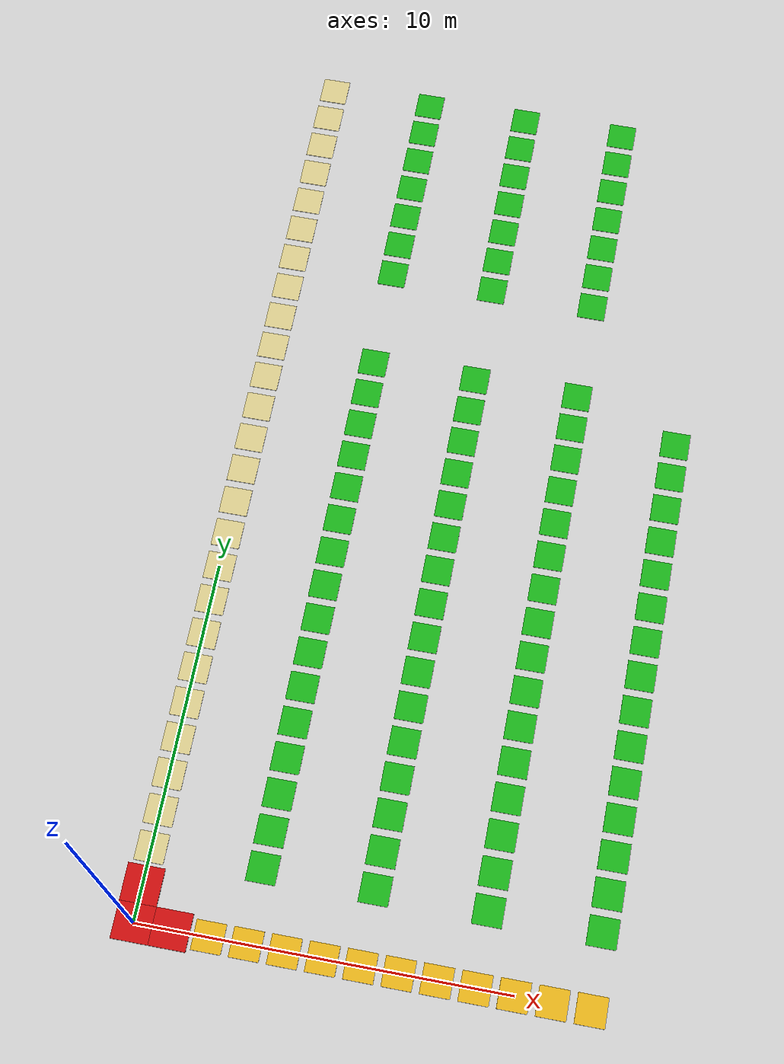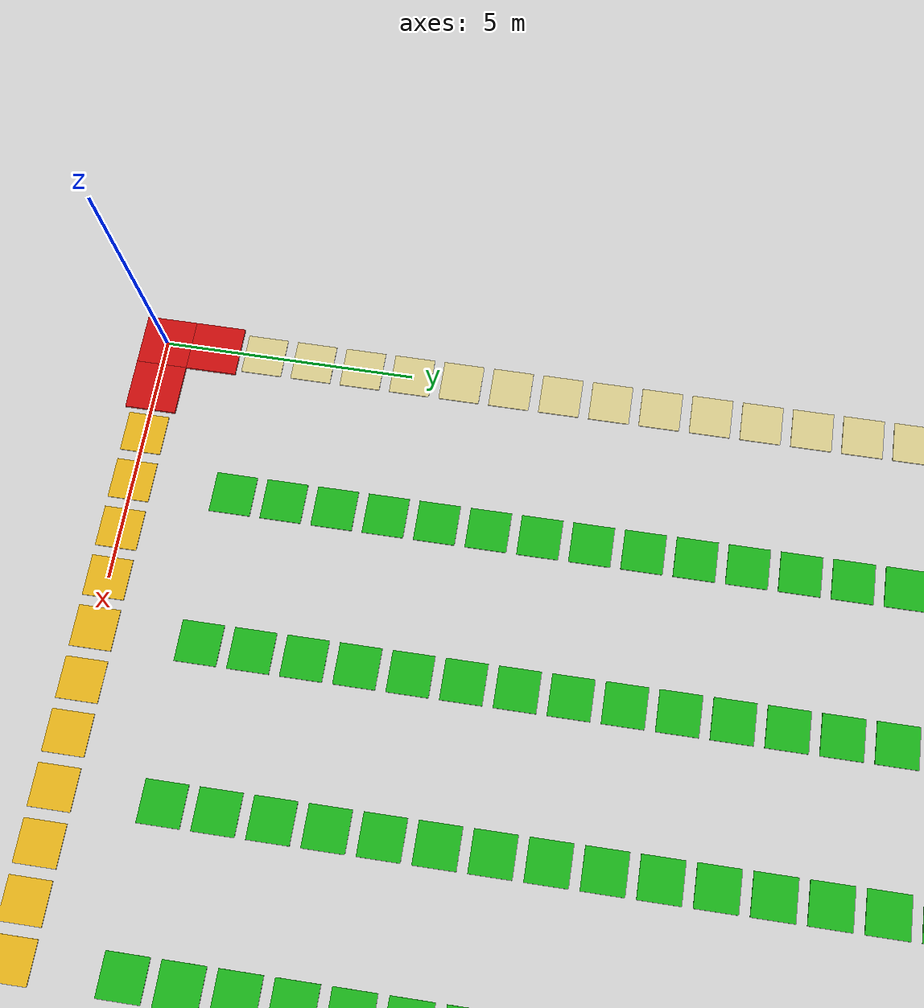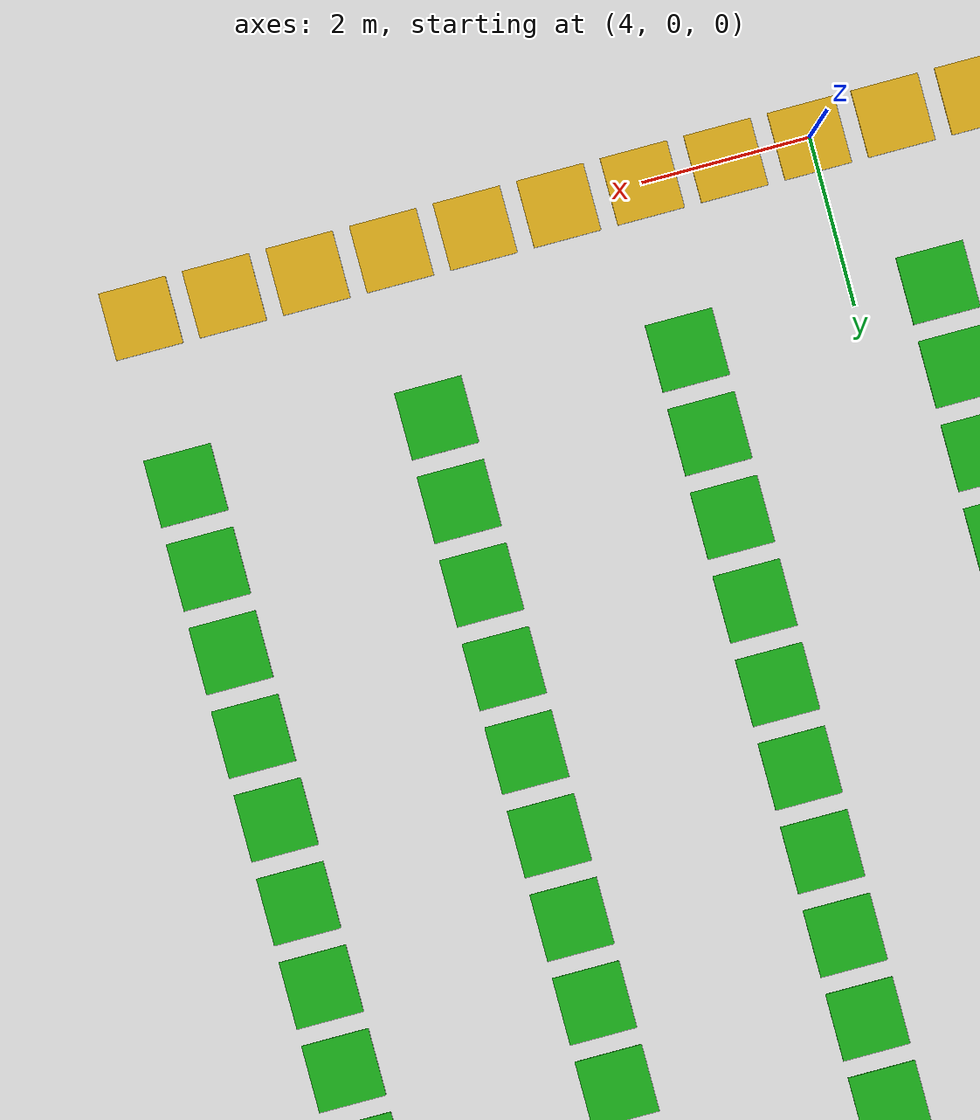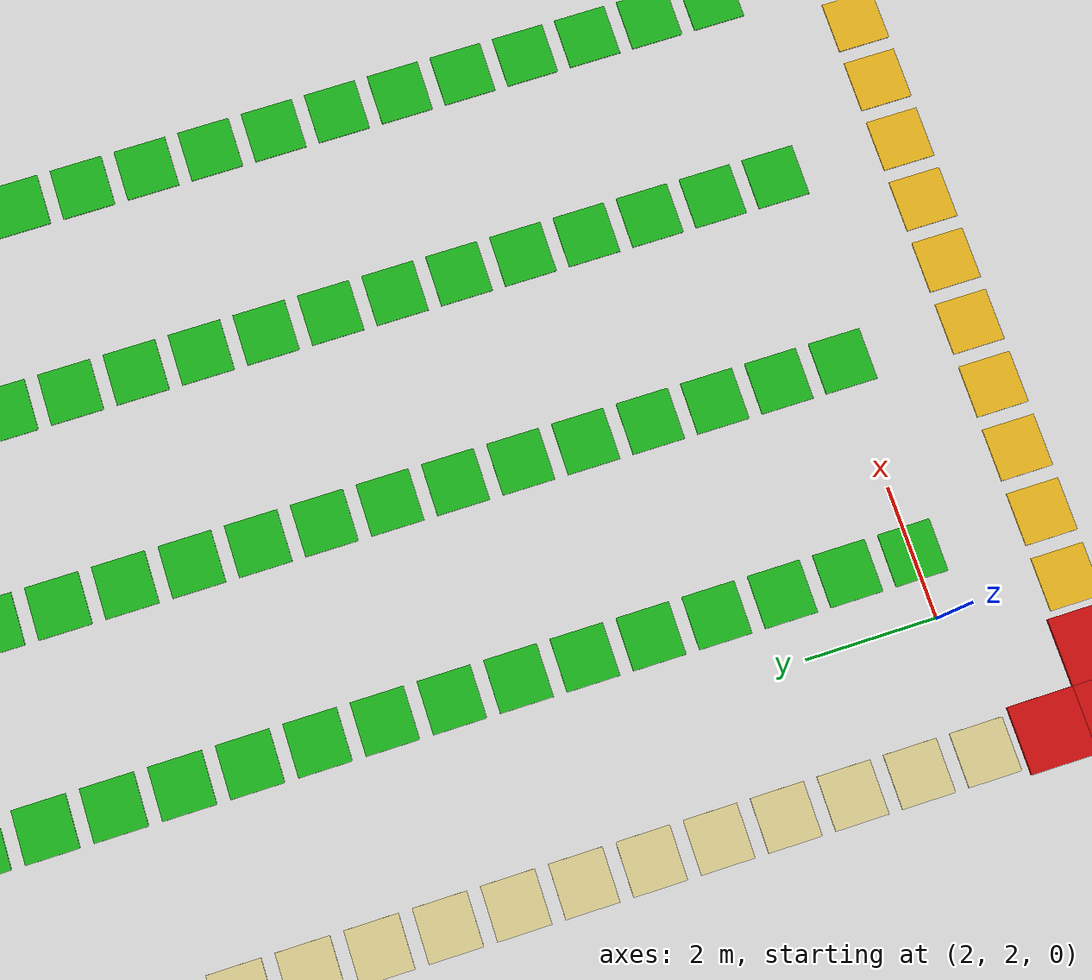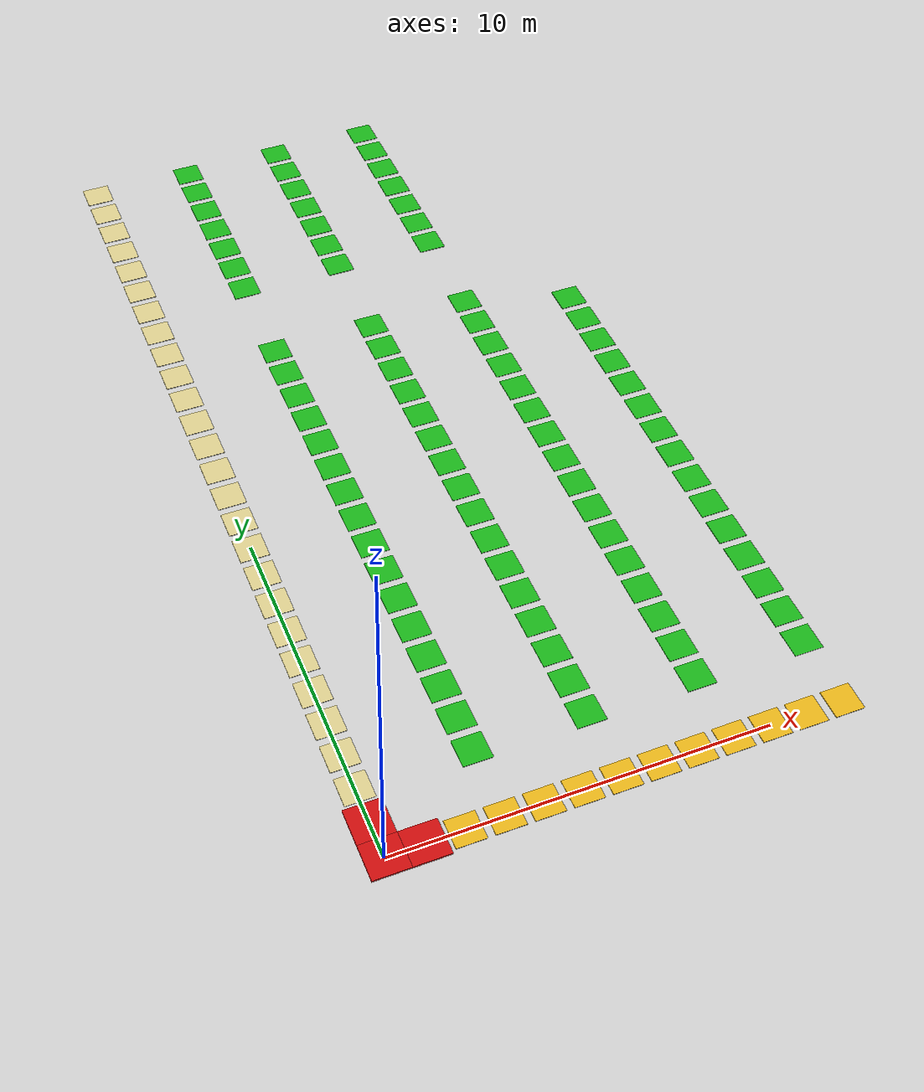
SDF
<sdf version="1.10">
 <world name="warehouse">
  <model name="blocked_0000">
   <static>true</static>
   <pose>0.0
        0.0
        0.045
        0 0 0</pose>
   <link name="link">
    <visual name="visual">
     <geometry><box><size>1.0
                1.0
                0.05</size></box></geometry>
     <material><ambient>0.8 0.05 0.05 1</ambient><diffuse>0.8 0.05 0.05 1</diffuse></material>
    </visual>
   </link>
  </model>
  <model name="blocked_0001">
   <static>true</static>
   <pose>0.0
        1.0
        0.045
        0 0 0</pose>
   <link name="link">
    <visual name="visual">
     <geometry><box><size>1.0
                1.0
                0.05</size></box></geometry>
     <material><ambient>0.8 0.05 0.05 1</ambient><diffuse>0.8 0.05 0.05 1</diffuse></material>
    </visual>
   </link>
  </model>
  <model name="blocked_0004">
   <static>true</static>
   <pose>1.0
        0.0
        0.045
        0 0 0</pose>
   <link name="link">
    <visual name="visual">
     <geometry><box><size>1.0
                1.0
                0.05</size></box></geometry>
     <material><ambient>0.8 0.05 0.05 1</ambient><diffuse>0.8 0.05 0.05 1</diffuse></material>
    </visual>
   </link>
  </model>
  <model name="staging_051">
   <static>true</static>
   <pose>0.0
        26.0
        0.02
        0 0 0</pose>
   <link name="link">
    <visual name="visual">
     <geometry><box><size>0.8
                0.8
                0.02</size></box></geometry>
     <material><ambient>0.85 0.80 0.55 1</ambient><diffuse>0.85 0.80 0.55 1</diffuse></material>
    </visual>
   </link>
  </model>
  <model name="shelf_277">
   <static>true</static>
   <pose>3.0
        26.0
        0.02
        0 0 0</pose>
   <link name="link">
    <visual name="visual">
     <geometry><box><size>0.8
                0.8
                0.02</size></box></geometry>
     <material><ambient>0.10 0.70 0.10 1</ambient><diffuse>0.10 0.70 0.10 1</diffuse></material>
    </visual>
   </link>
  </model>
  <model name="shelf_278">
   <static>true</static>
   <pose>6.0
        26.0
        0.02
        0 0 0</pose>
   <link name="link">
    <visual name="visual">
     <geometry><box><size>0.8
                0.8
                0.02</size></box></geometry>
     <material><ambient>0.10 0.70 0.10 1</ambient><diffuse>0.10 0.70 0.10 1</diffuse></material>
    </visual>
   </link>
  </model>
  <model name="shelf_279">
   <static>true</static>
   <pose>9.0
        26.0
        0.02
        0 0 0</pose>
   <link name="link">
    <visual name="visual">
     <geometry><box><size>0.8
                0.8
                0.02</size></box></geometry>
     <material><ambient>0.10 0.70 0.10 1</ambient><diffuse>0.10 0.70 0.10 1</diffuse></material>
    </visual>
   </link>
  </model>
  <model name="staging_053">
   <static>true</static>
   <pose>0.0
        25.0
        0.02
        0 0 0</pose>
   <link name="link">
    <visual name="visual">
     <geometry><box><size>0.8
                0.8
                0.02</size></box></geometry>
     <material><ambient>0.85 0.80 0.55 1</ambient><diffuse>0.85 0.80 0.55 1</diffuse></material>
    </visual>
   </link>
  </model>
  <model name="shelf_289">
   <static>true</static>
   <pose>3.0
        25.0
        0.02
        0 0 0</pose>
   <link name="link">
    <visual name="visual">
     <geometry><box><size>0.8
                0.8
                0.02</size></box></geometry>
     <material><ambient>0.10 0.70 0.10 1</ambient><diffuse>0.10 0.70 0.10 1</diffuse></material>
    </visual>
   </link>
  </model>
  <model name="shelf_290">
   <static>true</static>
   <pose>6.0
        25.0
        0.02
        0 0 0</pose>
   <link name="link">
    <visual name="visual">
     <geometry><box><size>0.8
                0.8
                0.02</size></box></geometry>
     <material><ambient>0.10 0.70 0.10 1</ambient><diffuse>0.10 0.70 0.10 1</diffuse></material>
    </visual>
   </link>
  </model>
  <model name="shelf_291">
   <static>true</static>
   <pose>9.0
        25.0
        0.02
        0 0 0</pose>
   <link name="link">
    <visual name="visual">
     <geometry><box><size>0.8
                0.8
                0.02</size></box></geometry>
     <material><ambient>0.10 0.70 0.10 1</ambient><diffuse>0.10 0.70 0.10 1</diffuse></material>
    </visual>
   </link>
  </model>
  <model name="staging_055">
   <static>true</static>
   <pose>0.0
        24.0
        0.02
        0 0 0</pose>
   <link name="link">
    <visual name="visual">
     <geometry><box><size>0.8
                0.8
                0.02</size></box></geometry>
     <material><ambient>0.85 0.80 0.55 1</ambient><diffuse>0.85 0.80 0.55 1</diffuse></material>
    </visual>
   </link>
  </model>
  <model name="shelf_301">
   <static>true</static>
   <pose>3.0
        24.0
        0.02
        0 0 0</pose>
   <link name="link">
    <visual name="visual">
     <geometry><box><size>0.8
                0.8
                0.02</size></box></geometry>
     <material><ambient>0.10 0.70 0.10 1</ambient><diffuse>0.10 0.70 0.10 1</diffuse></material>
    </visual>
   </link>
  </model>
  <model name="shelf_302">
   <static>true</static>
   <pose>6.0
        24.0
        0.02
        0 0 0</pose>
   <link name="link">
    <visual name="visual">
     <geometry><box><size>0.8
                0.8
                0.02</size></box></geometry>
     <material><ambient>0.10 0.70 0.10 1</ambient><diffuse>0.10 0.70 0.10 1</diffuse></material>
    </visual>
   </link>
  </model>
  <model name="shelf_303">
   <static>true</static>
   <pose>9.0
        24.0
        0.02
        0 0 0</pose>
   <link name="link">
    <visual name="visual">
     <geometry><box><size>0.8
                0.8
                0.02</size></box></geometry>
     <material><ambient>0.10 0.70 0.10 1</ambient><diffuse>0.10 0.70 0.10 1</diffuse></material>
    </visual>
   </link>
  </model>
  <model name="staging_057">
   <static>true</static>
   <pose>0.0
        23.0
        0.02
        0 0 0</pose>
   <link name="link">
    <visual name="visual">
     <geometry><box><size>0.8
                0.8
                0.02</size></box></geometry>
     <material><ambient>0.85 0.80 0.55 1</ambient><diffuse>0.85 0.80 0.55 1</diffuse></material>
    </visual>
   </link>
  </model>
  <model name="shelf_313">
   <static>true</static>
   <pose>3.0
        23.0
        0.02
        0 0 0</pose>
   <link name="link">
    <visual name="visual">
     <geometry><box><size>0.8
                0.8
                0.02</size></box></geometry>
     <material><ambient>0.10 0.70 0.10 1</ambient><diffuse>0.10 0.70 0.10 1</diffuse></material>
    </visual>
   </link>
  </model>
  <model name="shelf_314">
   <static>true</static>
   <pose>6.0
        23.0
        0.02
        0 0 0</pose>
   <link name="link">
    <visual name="visual">
     <geometry><box><size>0.8
                0.8
                0.02</size></box></geometry>
     <material><ambient>0.10 0.70 0.10 1</ambient><diffuse>0.10 0.70 0.10 1</diffuse></material>
    </visual>
   </link>
  </model>
  <model name="shelf_315">
   <static>true</static>
   <pose>9.0
        23.0
        0.02
        0 0 0</pose>
   <link name="link">
    <visual name="visual">
     <geometry><box><size>0.8
                0.8
                0.02</size></box></geometry>
     <material><ambient>0.10 0.70 0.10 1</ambient><diffuse>0.10 0.70 0.10 1</diffuse></material>
    </visual>
   </link>
  </model>
  <model name="staging_059">
   <static>true</static>
   <pose>0.0
        22.0
        0.02
        0 0 0</pose>
   <link name="link">
    <visual name="visual">
     <geometry><box><size>0.8
                0.8
                0.02</size></box></geometry>
     <material><ambient>0.85 0.80 0.55 1</ambient><diffuse>0.85 0.80 0.55 1</diffuse></material>
    </visual>
   </link>
  </model>
  <model name="shelf_325">
   <static>true</static>
   <pose>3.0
        22.0
        0.02
        0 0 0</pose>
   <link name="link">
    <visual name="visual">
     <geometry><box><size>0.8
                0.8
                0.02</size></box></geometry>
     <material><ambient>0.10 0.70 0.10 1</ambient><diffuse>0.10 0.70 0.10 1</diffuse></material>
    </visual>
   </link>
  </model>
  <model name="shelf_326">
   <static>true</static>
   <pose>6.0
        22.0
        0.02
        0 0 0</pose>
   <link name="link">
    <visual name="visual">
     <geometry><box><size>0.8
                0.8
                0.02</size></box></geometry>
     <material><ambient>0.10 0.70 0.10 1</ambient><diffuse>0.10 0.70 0.10 1</diffuse></material>
    </visual>
   </link>
  </model>
  <model name="shelf_327">
   <static>true</static>
   <pose>9.0
        22.0
        0.02
        0 0 0</pose>
   <link name="link">
    <visual name="visual">
     <geometry><box><size>0.8
                0.8
                0.02</size></box></geometry>
     <material><ambient>0.10 0.70 0.10 1</ambient><diffuse>0.10 0.70 0.10 1</diffuse></material>
    </visual>
   </link>
  </model>
  <model name="staging_061">
   <static>true</static>
   <pose>0.0
        21.0
        0.02
        0 0 0</pose>
   <link name="link">
    <visual name="visual">
     <geometry><box><size>0.8
                0.8
                0.02</size></box></geometry>
     <material><ambient>0.85 0.80 0.55 1</ambient><diffuse>0.85 0.80 0.55 1</diffuse></material>
    </visual>
   </link>
  </model>
  <model name="shelf_337">
   <static>true</static>
   <pose>3.0
        21.0
        0.02
        0 0 0</pose>
   <link name="link">
    <visual name="visual">
     <geometry><box><size>0.8
                0.8
                0.02</size></box></geometry>
     <material><ambient>0.10 0.70 0.10 1</ambient><diffuse>0.10 0.70 0.10 1</diffuse></material>
    </visual>
   </link>
  </model>
  <model name="shelf_338">
   <static>true</static>
   <pose>6.0
        21.0
        0.02
        0 0 0</pose>
   <link name="link">
    <visual name="visual">
     <geometry><box><size>0.8
                0.8
                0.02</size></box></geometry>
     <material><ambient>0.10 0.70 0.10 1</ambient><diffuse>0.10 0.70 0.10 1</diffuse></material>
    </visual>
   </link>
  </model>
  <model name="shelf_339">
   <static>true</static>
   <pose>9.0
        21.0
        0.02
        0 0 0</pose>
   <link name="link">
    <visual name="visual">
     <geometry><box><size>0.8
                0.8
                0.02</size></box></geometry>
     <material><ambient>0.10 0.70 0.10 1</ambient><diffuse>0.10 0.70 0.10 1</diffuse></material>
    </visual>
   </link>
  </model>
  <model name="staging_063">
   <static>true</static>
   <pose>0.0
        20.0
        0.02
        0 0 0</pose>
   <link name="link">
    <visual name="visual">
     <geometry><box><size>0.8
                0.8
                0.02</size></box></geometry>
     <material><ambient>0.85 0.80 0.55 1</ambient><diffuse>0.85 0.80 0.55 1</diffuse></material>
    </visual>
   </link>
  </model>
  <model name="shelf_349">
   <static>true</static>
   <pose>3.0
        20.0
        0.02
        0 0 0</pose>
   <link name="link">
    <visual name="visual">
     <geometry><box><size>0.8
                0.8
                0.02</size></box></geometry>
     <material><ambient>0.10 0.70 0.10 1</ambient><diffuse>0.10 0.70 0.10 1</diffuse></material>
    </visual>
   </link>
  </model>
  <model name="shelf_350">
   <static>true</static>
   <pose>6.0
        20.0
        0.02
        0 0 0</pose>
   <link name="link">
    <visual name="visual">
     <geometry><box><size>0.8
                0.8
                0.02</size></box></geometry>
     <material><ambient>0.10 0.70 0.10 1</ambient><diffuse>0.10 0.70 0.10 1</diffuse></material>
    </visual>
   </link>
  </model>
  <model name="shelf_351">
   <static>true</static>
   <pose>9.0
        20.0
        0.02
        0 0 0</pose>
   <link name="link">
    <visual name="visual">
     <geometry><box><size>0.8
                0.8
                0.02</size></box></geometry>
     <material><ambient>0.10 0.70 0.10 1</ambient><diffuse>0.10 0.70 0.10 1</diffuse></material>
    </visual>
   </link>
  </model>
  <model name="staging_065">
   <static>true</static>
   <pose>0.0
        19.0
        0.02
        0 0 0</pose>
   <link name="link">
    <visual name="visual">
     <geometry><box><size>0.8
                0.8
                0.02</size></box></geometry>
     <material><ambient>0.85 0.80 0.55 1</ambient><diffuse>0.85 0.80 0.55 1</diffuse></material>
    </visual>
   </link>
  </model>
  <model name="staging_067">
   <static>true</static>
   <pose>0.0
        18.0
        0.02
        0 0 0</pose>
   <link name="link">
    <visual name="visual">
     <geometry><box><size>0.8
                0.8
                0.02</size></box></geometry>
     <material><ambient>0.85 0.80 0.55 1</ambient><diffuse>0.85 0.80 0.55 1</diffuse></material>
    </visual>
   </link>
  </model>
  <model name="staging_069">
   <static>true</static>
   <pose>0.0
        17.0
        0.02
        0 0 0</pose>
   <link name="link">
    <visual name="visual">
     <geometry><box><size>0.8
                0.8
                0.02</size></box></geometry>
     <material><ambient>0.85 0.80 0.55 1</ambient><diffuse>0.85 0.80 0.55 1</diffuse></material>
    </visual>
   </link>
  </model>
  <model name="shelf_361">
   <static>true</static>
   <pose>3.0
        17.0
        0.02
        0 0 0</pose>
   <link name="link">
    <visual name="visual">
     <geometry><box><size>0.8
                0.8
                0.02</size></box></geometry>
     <material><ambient>0.10 0.70 0.10 1</ambient><diffuse>0.10 0.70 0.10 1</diffuse></material>
    </visual>
   </link>
  </model>
  <model name="shelf_362">
   <static>true</static>
   <pose>6.0
        17.0
        0.02
        0 0 0</pose>
   <link name="link">
    <visual name="visual">
     <geometry><box><size>0.8
                0.8
                0.02</size></box></geometry>
     <material><ambient>0.10 0.70 0.10 1</ambient><diffuse>0.10 0.70 0.10 1</diffuse></material>
    </visual>
   </link>
  </model>
  <model name="shelf_363">
   <static>true</static>
   <pose>9.0
        17.0
        0.02
        0 0 0</pose>
   <link name="link">
    <visual name="visual">
     <geometry><box><size>0.8
                0.8
                0.02</size></box></geometry>
     <material><ambient>0.10 0.70 0.10 1</ambient><diffuse>0.10 0.70 0.10 1</diffuse></material>
    </visual>
   </link>
  </model>
  <model name="staging_071">
   <static>true</static>
   <pose>0.0
        16.0
        0.02
        0 0 0</pose>
   <link name="link">
    <visual name="visual">
     <geometry><box><size>0.8
                0.8
                0.02</size></box></geometry>
     <material><ambient>0.85 0.80 0.55 1</ambient><diffuse>0.85 0.80 0.55 1</diffuse></material>
    </visual>
   </link>
  </model>
  <model name="shelf_373">
   <static>true</static>
   <pose>3.0
        16.0
        0.02
        0 0 0</pose>
   <link name="link">
    <visual name="visual">
     <geometry><box><size>0.8
                0.8
                0.02</size></box></geometry>
     <material><ambient>0.10 0.70 0.10 1</ambient><diffuse>0.10 0.70 0.10 1</diffuse></material>
    </visual>
   </link>
  </model>
  <model name="shelf_374">
   <static>true</static>
   <pose>6.0
        16.0
        0.02
        0 0 0</pose>
   <link name="link">
    <visual name="visual">
     <geometry><box><size>0.8
                0.8
                0.02</size></box></geometry>
     <material><ambient>0.10 0.70 0.10 1</ambient><diffuse>0.10 0.70 0.10 1</diffuse></material>
    </visual>
   </link>
  </model>
  <model name="shelf_375">
   <static>true</static>
   <pose>9.0
        16.0
        0.02
        0 0 0</pose>
   <link name="link">
    <visual name="visual">
     <geometry><box><size>0.8
                0.8
                0.02</size></box></geometry>
     <material><ambient>0.10 0.70 0.10 1</ambient><diffuse>0.10 0.70 0.10 1</diffuse></material>
    </visual>
   </link>
  </model>
  <model name="shelf_376">
   <static>true</static>
   <pose>12.0
        16.0
        0.02
        0 0 0</pose>
   <link name="link">
    <visual name="visual">
     <geometry><box><size>0.8
                0.8
                0.02</size></box></geometry>
     <material><ambient>0.10 0.70 0.10 1</ambient><diffuse>0.10 0.70 0.10 1</diffuse></material>
    </visual>
   </link>
  </model>
  <model name="staging_073">
   <static>true</static>
   <pose>0.0
        15.0
        0.02
        0 0 0</pose>
   <link name="link">
    <visual name="visual">
     <geometry><box><size>0.8
                0.8
                0.02</size></box></geometry>
     <material><ambient>0.85 0.80 0.55 1</ambient><diffuse>0.85 0.80 0.55 1</diffuse></material>
    </visual>
   </link>
  </model>
  <model name="shelf_385">
   <static>true</static>
   <pose>3.0
        15.0
        0.02
        0 0 0</pose>
   <link name="link">
    <visual name="visual">
     <geometry><box><size>0.8
                0.8
                0.02</size></box></geometry>
     <material><ambient>0.10 0.70 0.10 1</ambient><diffuse>0.10 0.70 0.10 1</diffuse></material>
    </visual>
   </link>
  </model>
  <model name="shelf_386">
   <static>true</static>
   <pose>6.0
        15.0
        0.02
        0 0 0</pose>
   <link name="link">
    <visual name="visual">
     <geometry><box><size>0.8
                0.8
                0.02</size></box></geometry>
     <material><ambient>0.10 0.70 0.10 1</ambient><diffuse>0.10 0.70 0.10 1</diffuse></material>
    </visual>
   </link>
  </model>
  <model name="shelf_387">
   <static>true</static>
   <pose>9.0
        15.0
        0.02
        0 0 0</pose>
   <link name="link">
    <visual name="visual">
     <geometry><box><size>0.8
                0.8
                0.02</size></box></geometry>
     <material><ambient>0.10 0.70 0.10 1</ambient><diffuse>0.10 0.70 0.10 1</diffuse></material>
    </visual>
   </link>
  </model>
  <model name="shelf_388">
   <static>true</static>
   <pose>12.0
        15.0
        0.02
        0 0 0</pose>
   <link name="link">
    <visual name="visual">
     <geometry><box><size>0.8
                0.8
                0.02</size></box></geometry>
     <material><ambient>0.10 0.70 0.10 1</ambient><diffuse>0.10 0.70 0.10 1</diffuse></material>
    </visual>
   </link>
  </model>
  <model name="staging_075">
   <static>true</static>
   <pose>0.0
        14.0
        0.02
        0 0 0</pose>
   <link name="link">
    <visual name="visual">
     <geometry><box><size>0.8
                0.8
                0.02</size></box></geometry>
     <material><ambient>0.85 0.80 0.55 1</ambient><diffuse>0.85 0.80 0.55 1</diffuse></material>
    </visual>
   </link>
  </model>
  <model name="shelf_397">
   <static>true</static>
   <pose>3.0
        14.0
        0.02
        0 0 0</pose>
   <link name="link">
    <visual name="visual">
     <geometry><box><size>0.8
                0.8
                0.02</size></box></geometry>
     <material><ambient>0.10 0.70 0.10 1</ambient><diffuse>0.10 0.70 0.10 1</diffuse></material>
    </visual>
   </link>
  </model>
  <model name="shelf_398">
   <static>true</static>
   <pose>6.0
        14.0
        0.02
        0 0 0</pose>
   <link name="link">
    <visual name="visual">
     <geometry><box><size>0.8
                0.8
                0.02</size></box></geometry>
     <material><ambient>0.10 0.70 0.10 1</ambient><diffuse>0.10 0.70 0.10 1</diffuse></material>
    </visual>
   </link>
  </model>
  <model name="shelf_399">
   <static>true</static>
   <pose>9.0
        14.0
        0.02
        0 0 0</pose>
   <link name="link">
    <visual name="visual">
     <geometry><box><size>0.8
                0.8
                0.02</size></box></geometry>
     <material><ambient>0.10 0.70 0.10 1</ambient><diffuse>0.10 0.70 0.10 1</diffuse></material>
    </visual>
   </link>
  </model>
  <model name="shelf_400">
   <static>true</static>
   <pose>12.0
        14.0
        0.02
        0 0 0</pose>
   <link name="link">
    <visual name="visual">
     <geometry><box><size>0.8
                0.8
                0.02</size></box></geometry>
     <material><ambient>0.10 0.70 0.10 1</ambient><diffuse>0.10 0.70 0.10 1</diffuse></material>
    </visual>
   </link>
  </model>
  <model name="staging_077">
   <static>true</static>
   <pose>0.0
        13.0
        0.02
        0 0 0</pose>
   <link name="link">
    <visual name="visual">
     <geometry><box><size>0.8
                0.8
                0.02</size></box></geometry>
     <material><ambient>0.85 0.80 0.55 1</ambient><diffuse>0.85 0.80 0.55 1</diffuse></material>
    </visual>
   </link>
  </model>
  <model name="shelf_409">
   <static>true</static>
   <pose>3.0
        13.0
        0.02
        0 0 0</pose>
   <link name="link">
    <visual name="visual">
     <geometry><box><size>0.8
                0.8
                0.02</size></box></geometry>
     <material><ambient>0.10 0.70 0.10 1</ambient><diffuse>0.10 0.70 0.10 1</diffuse></material>
    </visual>
   </link>
  </model>
  <model name="shelf_410">
   <static>true</static>
   <pose>6.0
        13.0
        0.02
        0 0 0</pose>
   <link name="link">
    <visual name="visual">
     <geometry><box><size>0.8
                0.8
                0.02</size></box></geometry>
     <material><ambient>0.10 0.70 0.10 1</ambient><diffuse>0.10 0.70 0.10 1</diffuse></material>
    </visual>
   </link>
  </model>
  <model name="shelf_411">
   <static>true</static>
   <pose>9.0
        13.0
        0.02
        0 0 0</pose>
   <link name="link">
    <visual name="visual">
     <geometry><box><size>0.8
                0.8
                0.02</size></box></geometry>
     <material><ambient>0.10 0.70 0.10 1</ambient><diffuse>0.10 0.70 0.10 1</diffuse></material>
    </visual>
   </link>
  </model>
  <model name="shelf_412">
   <static>true</static>
   <pose>12.0
        13.0
        0.02
        0 0 0</pose>
   <link name="link">
    <visual name="visual">
     <geometry><box><size>0.8
                0.8
                0.02</size></box></geometry>
     <material><ambient>0.10 0.70 0.10 1</ambient><diffuse>0.10 0.70 0.10 1</diffuse></material>
    </visual>
   </link>
  </model>
  <model name="staging_079">
   <static>true</static>
   <pose>0.0
        12.0
        0.02
        0 0 0</pose>
   <link name="link">
    <visual name="visual">
     <geometry><box><size>0.8
                0.8
                0.02</size></box></geometry>
     <material><ambient>0.85 0.80 0.55 1</ambient><diffuse>0.85 0.80 0.55 1</diffuse></material>
    </visual>
   </link>
  </model>
  <model name="shelf_421">
   <static>true</static>
   <pose>3.0
        12.0
        0.02
        0 0 0</pose>
   <link name="link">
    <visual name="visual">
     <geometry><box><size>0.8
                0.8
                0.02</size></box></geometry>
     <material><ambient>0.10 0.70 0.10 1</ambient><diffuse>0.10 0.70 0.10 1</diffuse></material>
    </visual>
   </link>
  </model>
  <model name="shelf_422">
   <static>true</static>
   <pose>6.0
        12.0
        0.02
        0 0 0</pose>
   <link name="link">
    <visual name="visual">
     <geometry><box><size>0.8
                0.8
                0.02</size></box></geometry>
     <material><ambient>0.10 0.70 0.10 1</ambient><diffuse>0.10 0.70 0.10 1</diffuse></material>
    </visual>
   </link>
  </model>
  <model name="shelf_423">
   <static>true</static>
   <pose>9.0
        12.0
        0.02
        0 0 0</pose>
   <link name="link">
    <visual name="visual">
     <geometry><box><size>0.8
                0.8
                0.02</size></box></geometry>
     <material><ambient>0.10 0.70 0.10 1</ambient><diffuse>0.10 0.70 0.10 1</diffuse></material>
    </visual>
   </link>
  </model>
  <model name="shelf_424">
   <static>true</static>
   <pose>12.0
        12.0
        0.02
        0 0 0</pose>
   <link name="link">
    <visual name="visual">
     <geometry><box><size>0.8
                0.8
                0.02</size></box></geometry>
     <material><ambient>0.10 0.70 0.10 1</ambient><diffuse>0.10 0.70 0.10 1</diffuse></material>
    </visual>
   </link>
  </model>
  <model name="staging_081">
   <static>true</static>
   <pose>0.0
        11.0
        0.02
        0 0 0</pose>
   <link name="link">
    <visual name="visual">
     <geometry><box><size>0.8
                0.8
                0.02</size></box></geometry>
     <material><ambient>0.85 0.80 0.55 1</ambient><diffuse>0.85 0.80 0.55 1</diffuse></material>
    </visual>
   </link>
  </model>
  <model name="shelf_433">
   <static>true</static>
   <pose>3.0
        11.0
        0.02
        0 0 0</pose>
   <link name="link">
    <visual name="visual">
     <geometry><box><size>0.8
                0.8
                0.02</size></box></geometry>
     <material><ambient>0.10 0.70 0.10 1</ambient><diffuse>0.10 0.70 0.10 1</diffuse></material>
    </visual>
   </link>
  </model>
  <model name="shelf_434">
   <static>true</static>
   <pose>6.0
        11.0
        0.02
        0 0 0</pose>
   <link name="link">
    <visual name="visual">
     <geometry><box><size>0.8
                0.8
                0.02</size></box></geometry>
     <material><ambient>0.10 0.70 0.10 1</ambient><diffuse>0.10 0.70 0.10 1</diffuse></material>
    </visual>
   </link>
  </model>
  <model name="shelf_435">
   <static>true</static>
   <pose>9.0
        11.0
        0.02
        0 0 0</pose>
   <link name="link">
    <visual name="visual">
     <geometry><box><size>0.8
                0.8
                0.02</size></box></geometry>
     <material><ambient>0.10 0.70 0.10 1</ambient><diffuse>0.10 0.70 0.10 1</diffuse></material>
    </visual>
   </link>
  </model>
  <model name="shelf_436">
   <static>true</static>
   <pose>12.0
        11.0
        0.02
        0 0 0</pose>
   <link name="link">
    <visual name="visual">
     <geometry><box><size>0.8
                0.8
                0.02</size></box></geometry>
     <material><ambient>0.10 0.70 0.10 1</ambient><diffuse>0.10 0.70 0.10 1</diffuse></material>
    </visual>
   </link>
  </model>
  <model name="staging_083">
   <static>true</static>
   <pose>0.0
        10.0
        0.02
        0 0 0</pose>
   <link name="link">
    <visual name="visual">
     <geometry><box><size>0.8
                0.8
                0.02</size></box></geometry>
     <material><ambient>0.85 0.80 0.55 1</ambient><diffuse>0.85 0.80 0.55 1</diffuse></material>
    </visual>
   </link>
  </model>
  <model name="shelf_445">
   <static>true</static>
   <pose>3.0
        10.0
        0.02
        0 0 0</pose>
   <link name="link">
    <visual name="visual">
     <geometry><box><size>0.8
                0.8
                0.02</size></box></geometry>
     <material><ambient>0.10 0.70 0.10 1</ambient><diffuse>0.10 0.70 0.10 1</diffuse></material>
    </visual>
   </link>
  </model>
  <model name="shelf_446">
   <static>true</static>
   <pose>6.0
        10.0
        0.02
        0 0 0</pose>
   <link name="link">
    <visual name="visual">
     <geometry><box><size>0.8
                0.8
                0.02</size></box></geometry>
     <material><ambient>0.10 0.70 0.10 1</ambient><diffuse>0.10 0.70 0.10 1</diffuse></material>
    </visual>
   </link>
  </model>
  <model name="shelf_447">
   <static>true</static>
   <pose>9.0
        10.0
        0.02
        0 0 0</pose>
   <link name="link">
    <visual name="visual">
     <geometry><box><size>0.8
                0.8
                0.02</size></box></geometry>
     <material><ambient>0.10 0.70 0.10 1</ambient><diffuse>0.10 0.70 0.10 1</diffuse></material>
    </visual>
   </link>
  </model>
  <model name="shelf_448">
   <static>true</static>
   <pose>12.0
        10.0
        0.02
        0 0 0</pose>
   <link name="link">
    <visual name="visual">
     <geometry><box><size>0.8
                0.8
                0.02</size></box></geometry>
     <material><ambient>0.10 0.70 0.10 1</ambient><diffuse>0.10 0.70 0.10 1</diffuse></material>
    </visual>
   </link>
  </model>
  <model name="staging_085">
   <static>true</static>
   <pose>0.0
        9.0
        0.02
        0 0 0</pose>
   <link name="link">
    <visual name="visual">
     <geometry><box><size>0.8
                0.8
                0.02</size></box></geometry>
     <material><ambient>0.85 0.80 0.55 1</ambient><diffuse>0.85 0.80 0.55 1</diffuse></material>
    </visual>
   </link>
  </model>
  <model name="shelf_457">
   <static>true</static>
   <pose>3.0
        9.0
        0.02
        0 0 0</pose>
   <link name="link">
    <visual name="visual">
     <geometry><box><size>0.8
                0.8
                0.02</size></box></geometry>
     <material><ambient>0.10 0.70 0.10 1</ambient><diffuse>0.10 0.70 0.10 1</diffuse></material>
    </visual>
   </link>
  </model>
  <model name="shelf_458">
   <static>true</static>
   <pose>6.0
        9.0
        0.02
        0 0 0</pose>
   <link name="link">
    <visual name="visual">
     <geometry><box><size>0.8
                0.8
                0.02</size></box></geometry>
     <material><ambient>0.10 0.70 0.10 1</ambient><diffuse>0.10 0.70 0.10 1</diffuse></material>
    </visual>
   </link>
  </model>
  <model name="shelf_459">
   <static>true</static>
   <pose>9.0
        9.0
        0.02
        0 0 0</pose>
   <link name="link">
    <visual name="visual">
     <geometry><box><size>0.8
                0.8
                0.02</size></box></geometry>
     <material><ambient>0.10 0.70 0.10 1</ambient><diffuse>0.10 0.70 0.10 1</diffuse></material>
    </visual>
   </link>
  </model>
  <model name="shelf_460">
   <static>true</static>
   <pose>12.0
        9.0
        0.02
        0 0 0</pose>
   <link name="link">
    <visual name="visual">
     <geometry><box><size>0.8
                0.8
                0.02</size></box></geometry>
     <material><ambient>0.10 0.70 0.10 1</ambient><diffuse>0.10 0.70 0.10 1</diffuse></material>
    </visual>
   </link>
  </model>
  <model name="staging_087">
   <static>true</static>
   <pose>0.0
        8.0
        0.02
        0 0 0</pose>
   <link name="link">
    <visual name="visual">
     <geometry><box><size>0.8
                0.8
                0.02</size></box></geometry>
     <material><ambient>0.85 0.80 0.55 1</ambient><diffuse>0.85 0.80 0.55 1</diffuse></material>
    </visual>
   </link>
  </model>
  <model name="shelf_469">
   <static>true</static>
   <pose>3.0
        8.0
        0.02
        0 0 0</pose>
   <link name="link">
    <visual name="visual">
     <geometry><box><size>0.8
                0.8
                0.02</size></box></geometry>
     <material><ambient>0.10 0.70 0.10 1</ambient><diffuse>0.10 0.70 0.10 1</diffuse></material>
    </visual>
   </link>
  </model>
  <model name="shelf_470">
   <static>true</static>
   <pose>6.0
        8.0
        0.02
        0 0 0</pose>
   <link name="link">
    <visual name="visual">
     <geometry><box><size>0.8
                0.8
                0.02</size></box></geometry>
     <material><ambient>0.10 0.70 0.10 1</ambient><diffuse>0.10 0.70 0.10 1</diffuse></material>
    </visual>
   </link>
  </model>
  <model name="shelf_471">
   <static>true</static>
   <pose>9.0
        8.0
        0.02
        0 0 0</pose>
   <link name="link">
    <visual name="visual">
     <geometry><box><size>0.8
                0.8
                0.02</size></box></geometry>
     <material><ambient>0.10 0.70 0.10 1</ambient><diffuse>0.10 0.70 0.10 1</diffuse></material>
    </visual>
   </link>
  </model>
  <model name="shelf_472">
   <static>true</static>
   <pose>12.0
        8.0
        0.02
        0 0 0</pose>
   <link name="link">
    <visual name="visual">
     <geometry><box><size>0.8
                0.8
                0.02</size></box></geometry>
     <material><ambient>0.10 0.70 0.10 1</ambient><diffuse>0.10 0.70 0.10 1</diffuse></material>
    </visual>
   </link>
  </model>
  <model name="staging_089">
   <static>true</static>
   <pose>0.0
        7.0
        0.02
        0 0 0</pose>
   <link name="link">
    <visual name="visual">
     <geometry><box><size>0.8
                0.8
                0.02</size></box></geometry>
     <material><ambient>0.85 0.80 0.55 1</ambient><diffuse>0.85 0.80 0.55 1</diffuse></material>
    </visual>
   </link>
  </model>
  <model name="shelf_481">
   <static>true</static>
   <pose>3.0
        7.0
        0.02
        0 0 0</pose>
   <link name="link">
    <visual name="visual">
     <geometry><box><size>0.8
                0.8
                0.02</size></box></geometry>
     <material><ambient>0.10 0.70 0.10 1</ambient><diffuse>0.10 0.70 0.10 1</diffuse></material>
    </visual>
   </link>
  </model>
  <model name="shelf_482">
   <static>true</static>
   <pose>6.0
        7.0
        0.02
        0 0 0</pose>
   <link name="link">
    <visual name="visual">
     <geometry><box><size>0.8
                0.8
                0.02</size></box></geometry>
     <material><ambient>0.10 0.70 0.10 1</ambient><diffuse>0.10 0.70 0.10 1</diffuse></material>
    </visual>
   </link>
  </model>
  <model name="shelf_483">
   <static>true</static>
   <pose>9.0
        7.0
        0.02
        0 0 0</pose>
   <link name="link">
    <visual name="visual">
     <geometry><box><size>0.8
                0.8
                0.02</size></box></geometry>
     <material><ambient>0.10 0.70 0.10 1</ambient><diffuse>0.10 0.70 0.10 1</diffuse></material>
    </visual>
   </link>
  </model>
  <model name="shelf_484">
   <static>true</static>
   <pose>12.0
        7.0
        0.02
        0 0 0</pose>
   <link name="link">
    <visual name="visual">
     <geometry><box><size>0.8
                0.8
                0.02</size></box></geometry>
     <material><ambient>0.10 0.70 0.10 1</ambient><diffuse>0.10 0.70 0.10 1</diffuse></material>
    </visual>
   </link>
  </model>
  <model name="staging_091">
   <static>true</static>
   <pose>0.0
        6.0
        0.02
        0 0 0</pose>
   <link name="link">
    <visual name="visual">
     <geometry><box><size>0.8
                0.8
                0.02</size></box></geometry>
     <material><ambient>0.85 0.80 0.55 1</ambient><diffuse>0.85 0.80 0.55 1</diffuse></material>
    </visual>
   </link>
  </model>
  <model name="shelf_493">
   <static>true</static>
   <pose>3.0
        6.0
        0.02
        0 0 0</pose>
   <link name="link">
    <visual name="visual">
     <geometry><box><size>0.8
                0.8
                0.02</size></box></geometry>
     <material><ambient>0.10 0.70 0.10 1</ambient><diffuse>0.10 0.70 0.10 1</diffuse></material>
    </visual>
   </link>
  </model>
  <model name="shelf_494">
   <static>true</static>
   <pose>6.0
        6.0
        0.02
        0 0 0</pose>
   <link name="link">
    <visual name="visual">
     <geometry><box><size>0.8
                0.8
                0.02</size></box></geometry>
     <material><ambient>0.10 0.70 0.10 1</ambient><diffuse>0.10 0.70 0.10 1</diffuse></material>
    </visual>
   </link>
  </model>
  <model name="shelf_495">
   <static>true</static>
   <pose>9.0
        6.0
        0.02
        0 0 0</pose>
   <link name="link">
    <visual name="visual">
     <geometry><box><size>0.8
                0.8
                0.02</size></box></geometry>
     <material><ambient>0.10 0.70 0.10 1</ambient><diffuse>0.10 0.70 0.10 1</diffuse></material>
    </visual>
   </link>
  </model>
  <model name="shelf_496">
   <static>true</static>
   <pose>12.0
        6.0
        0.02
        0 0 0</pose>
   <link name="link">
    <visual name="visual">
     <geometry><box><size>0.8
                0.8
                0.02</size></box></geometry>
     <material><ambient>0.10 0.70 0.10 1</ambient><diffuse>0.10 0.70 0.10 1</diffuse></material>
    </visual>
   </link>
  </model>
  <model name="staging_093">
   <static>true</static>
   <pose>0.0
        5.0
        0.02
        0 0 0</pose>
   <link name="link">
    <visual name="visual">
     <geometry><box><size>0.8
                0.8
                0.02</size></box></geometry>
     <material><ambient>0.85 0.80 0.55 1</ambient><diffuse>0.85 0.80 0.55 1</diffuse></material>
    </visual>
   </link>
  </model>
  <model name="shelf_505">
   <static>true</static>
   <pose>3.0
        5.0
        0.02
        0 0 0</pose>
   <link name="link">
    <visual name="visual">
     <geometry><box><size>0.8
                0.8
                0.02</size></box></geometry>
     <material><ambient>0.10 0.70 0.10 1</ambient><diffuse>0.10 0.70 0.10 1</diffuse></material>
    </visual>
   </link>
  </model>
  <model name="shelf_506">
   <static>true</static>
   <pose>6.0
        5.0
        0.02
        0 0 0</pose>
   <link name="link">
    <visual name="visual">
     <geometry><box><size>0.8
                0.8
                0.02</size></box></geometry>
     <material><ambient>0.10 0.70 0.10 1</ambient><diffuse>0.10 0.70 0.10 1</diffuse></material>
    </visual>
   </link>
  </model>
  <model name="shelf_507">
   <static>true</static>
   <pose>9.0
        5.0
        0.02
        0 0 0</pose>
   <link name="link">
    <visual name="visual">
     <geometry><box><size>0.8
                0.8
                0.02</size></box></geometry>
     <material><ambient>0.10 0.70 0.10 1</ambient><diffuse>0.10 0.70 0.10 1</diffuse></material>
    </visual>
   </link>
  </model>
  <model name="shelf_508">
   <static>true</static>
   <pose>12.0
        5.0
        0.02
        0 0 0</pose>
   <link name="link">
    <visual name="visual">
     <geometry><box><size>0.8
                0.8
                0.02</size></box></geometry>
     <material><ambient>0.10 0.70 0.10 1</ambient><diffuse>0.10 0.70 0.10 1</diffuse></material>
    </visual>
   </link>
  </model>
  <model name="staging_095">
   <static>true</static>
   <pose>0.0
        4.0
        0.02
        0 0 0</pose>
   <link name="link">
    <visual name="visual">
     <geometry><box><size>0.8
                0.8
                0.02</size></box></geometry>
     <material><ambient>0.85 0.80 0.55 1</ambient><diffuse>0.85 0.80 0.55 1</diffuse></material>
    </visual>
   </link>
  </model>
  <model name="shelf_517">
   <static>true</static>
   <pose>3.0
        4.0
        0.02
        0 0 0</pose>
   <link name="link">
    <visual name="visual">
     <geometry><box><size>0.8
                0.8
                0.02</size></box></geometry>
     <material><ambient>0.10 0.70 0.10 1</ambient><diffuse>0.10 0.70 0.10 1</diffuse></material>
    </visual>
   </link>
  </model>
  <model name="shelf_518">
   <static>true</static>
   <pose>6.0
        4.0
        0.02
        0 0 0</pose>
   <link name="link">
    <visual name="visual">
     <geometry><box><size>0.8
                0.8
                0.02</size></box></geometry>
     <material><ambient>0.10 0.70 0.10 1</ambient><diffuse>0.10 0.70 0.10 1</diffuse></material>
    </visual>
   </link>
  </model>
  <model name="shelf_519">
   <static>true</static>
   <pose>9.0
        4.0
        0.02
        0 0 0</pose>
   <link name="link">
    <visual name="visual">
     <geometry><box><size>0.8
                0.8
                0.02</size></box></geometry>
     <material><ambient>0.10 0.70 0.10 1</ambient><diffuse>0.10 0.70 0.10 1</diffuse></material>
    </visual>
   </link>
  </model>
  <model name="shelf_520">
   <static>true</static>
   <pose>12.0
        4.0
        0.02
        0 0 0</pose>
   <link name="link">
    <visual name="visual">
     <geometry><box><size>0.8
                0.8
                0.02</size></box></geometry>
     <material><ambient>0.10 0.70 0.10 1</ambient><diffuse>0.10 0.70 0.10 1</diffuse></material>
    </visual>
   </link>
  </model>
  <model name="staging_097">
   <static>true</static>
   <pose>0.0
        3.0
        0.02
        0 0 0</pose>
   <link name="link">
    <visual name="visual">
     <geometry><box><size>0.8
                0.8
                0.02</size></box></geometry>
     <material><ambient>0.85 0.80 0.55 1</ambient><diffuse>0.85 0.80 0.55 1</diffuse></material>
    </visual>
   </link>
  </model>
  <model name="shelf_529">
   <static>true</static>
   <pose>3.0
        3.0
        0.02
        0 0 0</pose>
   <link name="link">
    <visual name="visual">
     <geometry><box><size>0.8
                0.8
                0.02</size></box></geometry>
     <material><ambient>0.10 0.70 0.10 1</ambient><diffuse>0.10 0.70 0.10 1</diffuse></material>
    </visual>
   </link>
  </model>
  <model name="shelf_530">
   <static>true</static>
   <pose>6.0
        3.0
        0.02
        0 0 0</pose>
   <link name="link">
    <visual name="visual">
     <geometry><box><size>0.8
                0.8
                0.02</size></box></geometry>
     <material><ambient>0.10 0.70 0.10 1</ambient><diffuse>0.10 0.70 0.10 1</diffuse></material>
    </visual>
   </link>
  </model>
  <model name="shelf_531">
   <static>true</static>
   <pose>9.0
        3.0
        0.02
        0 0 0</pose>
   <link name="link">
    <visual name="visual">
     <geometry><box><size>0.8
                0.8
                0.02</size></box></geometry>
     <material><ambient>0.10 0.70 0.10 1</ambient><diffuse>0.10 0.70 0.10 1</diffuse></material>
    </visual>
   </link>
  </model>
  <model name="shelf_532">
   <static>true</static>
   <pose>12.0
        3.0
        0.02
        0 0 0</pose>
   <link name="link">
    <visual name="visual">
     <geometry><box><size>0.8
                0.8
                0.02</size></box></geometry>
     <material><ambient>0.10 0.70 0.10 1</ambient><diffuse>0.10 0.70 0.10 1</diffuse></material>
    </visual>
   </link>
  </model>
  <model name="staging_099">
   <static>true</static>
   <pose>0.0
        2.0
        0.02
        0 0 0</pose>
   <link name="link">
    <visual name="visual">
     <geometry><box><size>0.8
                0.8
                0.02</size></box></geometry>
     <material><ambient>0.85 0.80 0.55 1</ambient><diffuse>0.85 0.80 0.55 1</diffuse></material>
    </visual>
   </link>
  </model>
  <model name="shelf_541">
   <static>true</static>
   <pose>3.0
        2.0
        0.02
        0 0 0</pose>
   <link name="link">
    <visual name="visual">
     <geometry><box><size>0.8
                0.8
                0.02</size></box></geometry>
     <material><ambient>0.10 0.70 0.10 1</ambient><diffuse>0.10 0.70 0.10 1</diffuse></material>
    </visual>
   </link>
  </model>
  <model name="shelf_542">
   <static>true</static>
   <pose>6.0
        2.0
        0.02
        0 0 0</pose>
   <link name="link">
    <visual name="visual">
     <geometry><box><size>0.8
                0.8
                0.02</size></box></geometry>
     <material><ambient>0.10 0.70 0.10 1</ambient><diffuse>0.10 0.70 0.10 1</diffuse></material>
    </visual>
   </link>
  </model>
  <model name="shelf_543">
   <static>true</static>
   <pose>9.0
        2.0
        0.02
        0 0 0</pose>
   <link name="link">
    <visual name="visual">
     <geometry><box><size>0.8
                0.8
                0.02</size></box></geometry>
     <material><ambient>0.10 0.70 0.10 1</ambient><diffuse>0.10 0.70 0.10 1</diffuse></material>
    </visual>
   </link>
  </model>
  <model name="shelf_544">
   <static>true</static>
   <pose>12.0
        2.0
        0.02
        0 0 0</pose>
   <link name="link">
    <visual name="visual">
     <geometry><box><size>0.8
                0.8
                0.02</size></box></geometry>
     <material><ambient>0.10 0.70 0.10 1</ambient><diffuse>0.10 0.70 0.10 1</diffuse></material>
    </visual>
   </link>
  </model>
  <model name="dropoff_001">
   <static>true</static>
   <pose>2.0
        0.0
        0.02
        0 0 0</pose>
   <link name="link">
    <visual name="visual">
     <geometry><box><size>0.8
                0.8
                0.02</size></box></geometry>
     <material><ambient>0.90 0.70 0.10 1</ambient><diffuse>0.90 0.70 0.10 1</diffuse></material>
    </visual>
   </link>
  </model>
  <model name="dropoff_002">
   <static>true</static>
   <pose>3.0
        0.0
        0.02
        0 0 0</pose>
   <link name="link">
    <visual name="visual">
     <geometry><box><size>0.8
                0.8
                0.02</size></box></geometry>
     <material><ambient>0.90 0.70 0.10 1</ambient><diffuse>0.90 0.70 0.10 1</diffuse></material>
    </visual>
   </link>
  </model>
  <model name="dropoff_003">
   <static>true</static>
   <pose>4.0
        0.0
        0.02
        0 0 0</pose>
   <link name="link">
    <visual name="visual">
     <geometry><box><size>0.8
                0.8
                0.02</size></box></geometry>
     <material><ambient>0.90 0.70 0.10 1</ambient><diffuse>0.90 0.70 0.10 1</diffuse></material>
    </visual>
   </link>
  </model>
  <model name="dropoff_004">
   <static>true</static>
   <pose>5.0
        0.0
        0.02
        0 0 0</pose>
   <link name="link">
    <visual name="visual">
     <geometry><box><size>0.8
                0.8
                0.02</size></box></geometry>
     <material><ambient>0.90 0.70 0.10 1</ambient><diffuse>0.90 0.70 0.10 1</diffuse></material>
    </visual>
   </link>
  </model>
  <model name="dropoff_005">
   <static>true</static>
   <pose>6.0
        0.0
        0.02
        0 0 0</pose>
   <link name="link">
    <visual name="visual">
     <geometry><box><size>0.8
                0.8
                0.02</size></box></geometry>
     <material><ambient>0.90 0.70 0.10 1</ambient><diffuse>0.90 0.70 0.10 1</diffuse></material>
    </visual>
   </link>
  </model>
  <model name="dropoff_006">
   <static>true</static>
   <pose>7.0
        0.0
        0.02
        0 0 0</pose>
   <link name="link">
    <visual name="visual">
     <geometry><box><size>0.8
                0.8
                0.02</size></box></geometry>
     <material><ambient>0.90 0.70 0.10 1</ambient><diffuse>0.90 0.70 0.10 1</diffuse></material>
    </visual>
   </link>
  </model>
  <model name="dropoff_007">
   <static>true</static>
   <pose>8.0
        0.0
        0.02
        0 0 0</pose>
   <link name="link">
    <visual name="visual">
     <geometry><box><size>0.8
                0.8
                0.02</size></box></geometry>
     <material><ambient>0.90 0.70 0.10 1</ambient><diffuse>0.90 0.70 0.10 1</diffuse></material>
    </visual>
   </link>
  </model>
  <model name="dropoff_008">
   <static>true</static>
   <pose>9.0
        0.0
        0.02
        0 0 0</pose>
   <link name="link">
    <visual name="visual">
     <geometry><box><size>0.8
                0.8
                0.02</size></box></geometry>
     <material><ambient>0.90 0.70 0.10 1</ambient><diffuse>0.90 0.70 0.10 1</diffuse></material>
    </visual>
   </link>
  </model>
  <model name="dropoff_009">
   <static>true</static>
   <pose>10.0
        0.0
        0.02
        0 0 0</pose>
   <link name="link">
    <visual name="visual">
     <geometry><box><size>0.8
                0.8
                0.02</size></box></geometry>
     <material><ambient>0.90 0.70 0.10 1</ambient><diffuse>0.90 0.70 0.10 1</diffuse></material>
    </visual>
   </link>
  </model>
  <model name="dropoff_010">
   <static>true</static>
   <pose>11.0
        0.0
        0.02
        0 0 0</pose>
   <link name="link">
    <visual name="visual">
     <geometry><box><size>0.8
                0.8
                0.02</size></box></geometry>
     <material><ambient>0.90 0.70 0.10 1</ambient><diffuse>0.90 0.70 0.10 1</diffuse></material>
    </visual>
   </link>
  </model>
  <model name="dropoff_011">
   <static>true</static>
   <pose>12.0
        0.0
        0.02
        0 0 0</pose>
   <link name="link">
    <visual name="visual">
     <geometry><box><size>0.8
                0.8
                0.02</size></box></geometry>
     <material><ambient>0.90 0.70 0.10 1</ambient><diffuse>0.90 0.70 0.10 1</diffuse></material>
    </visual>
   </link>
  </model>
 </world>
</sdf>
